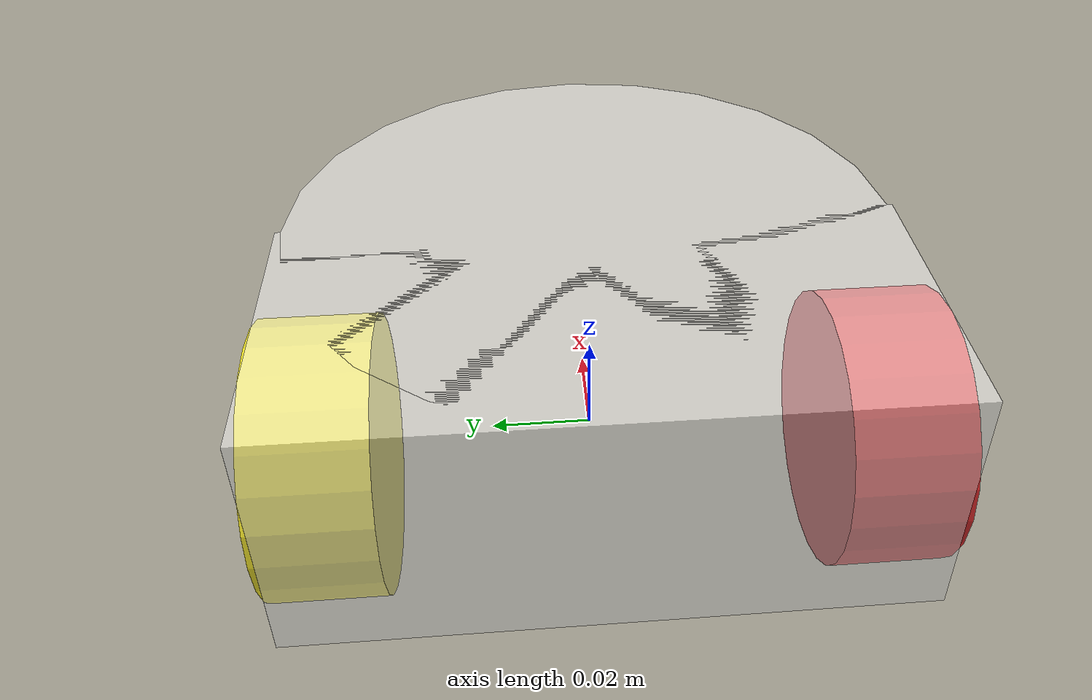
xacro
<?xml version="1.0"?>

<robot xmlns:xacro="https://www.ros.org/wiki/xacro" name="G30">

    <xacro:include filename="$(find ros_basics_2019)/urdf/macros.xacro" />
    <xacro:include filename="$(find ros_basics_2019)/urdf/materials.xacro" />

    <!-- Design your robot here -->
    <xacro:arg name="mass" default="0.200"/>
    <xacro:property name="mass_p" value="$(arg mass)"/>
    <xacro:property name="body_mass" value="${mass_p * 0.80}"/>
    <xacro:property name="wheel_mass" value="${mass_p * 0.10}"/>
    <xacro:property name="wheel_rad" value="0.024"/>
    <xacro:property name="wheel_width" value="0.020"/>

    <link name="base_link">
        <inertial>
            <mass value="${body_mass}"/>
            <xacro:box_inertia m="${body_mass}" x="0.055" y="0.112" z="0.045" />
        </inertial>

        <collision name="collision body">
            <origin xyz="${-0.11*0.25} 0 0.027"/>
            <geometry>
                <box size="0.055 0.112 0.045"/>
            </geometry>
        </collision>

        <visual name="visual body">
            <origin xyz="${-0.11*0.25} 0 ${0.045 - 2*0.009}"/>
            <geometry>
                <box size="0.055 0.112 0.045"/>
            </geometry>
            <material name="white"/>
        </visual>

        <collision name="collision caster">
            <origin xyz="0.035 0 0.009"/>
            <geometry>
                <sphere radius="0.009"/>
            </geometry>
        </collision>

        <visual name="visual caster">
            <origin xyz="0.045 0 0.009"/>
            <geometry>
                <sphere radius="0.009"/>
            </geometry>
            <material name="white"/>
        </visual>
    </link>

    <joint name="right_wheel_joint" type="continuous">
        <parent link="base_link"/>
        <child link="right_wheel_link"/>
        <axis xyz = "0 1 0"/>
        <origin xyz = "${- 0.11/2 + wheel_rad } -0.047 ${wheel_rad}"/>
    </joint>

    <link name="right_wheel_link">
        <inertial>
            <mass value="${wheel_mass}"/>
            <xacro:cylinder_inertia m="${wheel_mass}" r="${wheel_rad}" h="${wheel_width}"/>
        </inertial>

        <collision name="collision right_wheel">
            <origin xyz="0 0 0"/>
            <geometry>
                <cylinder radius="${wheel_rad}" length="${wheel_width}"/>
            </geometry>
        </collision>

        <visual name="visual right_wheel">
            <origin xyz="0 0 0" rpy="1.57075 0 0"/>
            <geometry>
                <cylinder radius="${wheel_rad}" length="${wheel_width}"/>
            </geometry>
            <material name="red"/>
        </visual>

    </link>

    <joint name="left_wheel_joint" type="continuous">
        <parent link="base_link"/>
        <child link="left_wheel_link"/>
        <axis xyz = "0 1 0"/>
        <origin xyz = "${- 0.11/2 + wheel_rad } 0.047 ${wheel_rad}"/>
    </joint>

    <link name="left_wheel_link">
        <inertial>
            <mass value="${wheel_mass}"/>
            <xacro:cylinder_inertia m="${wheel_mass}" r="${wheel_rad}" h="${wheel_width}"/>
        </inertial>

        <collision name="collision left_wheel">
            <origin xyz="0 0 0"/>
            <geometry>
                <cylinder radius="${wheel_rad}" length="${wheel_width}"/>
            </geometry>
        </collision>

        <visual name="visual left_wheel">
            <origin xyz="0 0 0" rpy="1.57075 0 0"/>
            <geometry>
                <cylinder radius="${wheel_rad}" length="${wheel_width}"/>
            </geometry>
            <material name="yellow"/>
        </visual>

    </link>

	<link name="head">
	    <visual>
	      <geometry>
		 <cylinder length="0.045" radius="0.055"/>
	      </geometry>
	      <material name="white">
		  <color rgba="1 1 1 0.5"/>
	      </material>
	    </visual>
	</link>

	  <joint name="tobox" type="fixed">
	    <parent link="base_link"/>
	    <child link="head"/>
	    <origin xyz="0 0 0.027"/>
	  </joint>

    <!-- Below you will find samples of gazebo plugins you may want to use. -->
    <!-- These should be adapted to your robot's design -->
    <gazebo reference="YOUR_SENSOR_LINK">
        <sensor type="ray" name="laser_right">
            <pose>0 0 0 0 0 0</pose>
            <ray>
                <scan>
                    <horizontal>
                        <samples>13</samples>
                        <resolution>1</resolution>
                        <min_angle>-1.571</min_angle>
                        <max_angle>1.571</max_angle>
                    </horizontal>
                </scan>
                <range>
                    <!-- You can edit adapt these to your robot's size -->
                    <min>0.0005</min>
                    <max>0.04</max>
                    <resolution>0.0001</resolution>
                </range>
            </ray>
            <plugin name="laser" filename="libgazebo_ros_laser.so" >
                <topicName>YOUR_ROBOT_LASER/scan</topicName>
                <frameName>YOUR_ROBOT_LASER_LINK</frameName>
            </plugin>
            <always_on>1</always_on>
            <update_rate>10</update_rate>
            <visualize>true</visualize>
        </sensor>
    </gazebo>

    <gazebo>
        <plugin name="differential_drive_controller" filename="libgazebo_ros_diff_drive.so">
            <alwaysOn>true</alwaysOn>
            <updateRate>20</updateRate>
            <leftJoint>left_wheel_joint</leftJoint>
            <rightJoint>right_wheel_joint</rightJoint>
            <wheelSeparation>0.094</wheelSeparation>
            <wheelDiameter>0.044</wheelDiameter>

            <commandTopic>cmd_vel</commandTopic>
            <odometryTopic>odom</odometryTopic>
            <odometryFrame>odom</odometryFrame>

            <robotBaseFrame>base_link</robotBaseFrame>
        </plugin>
    </gazebo>

</robot>
